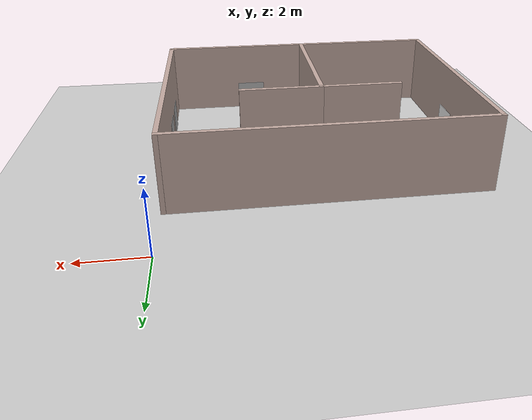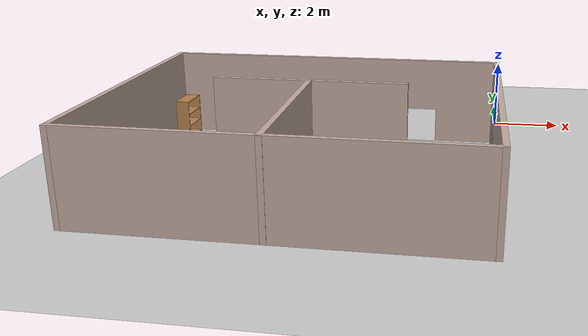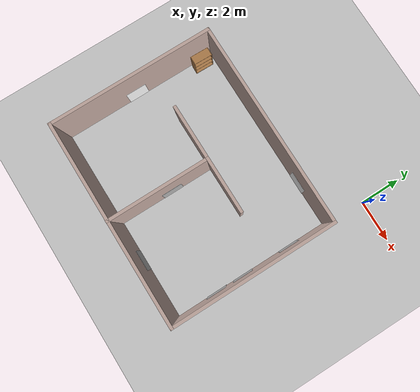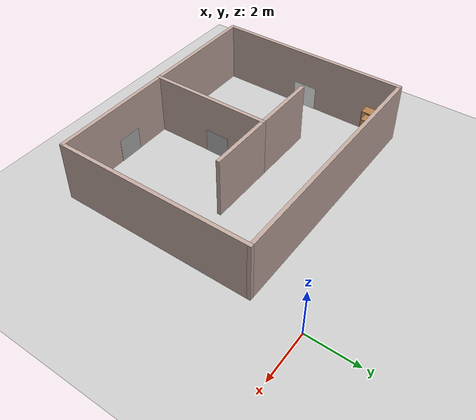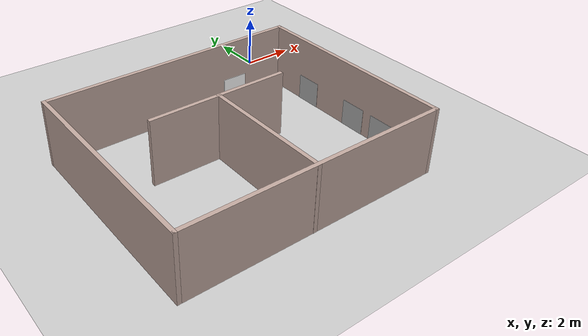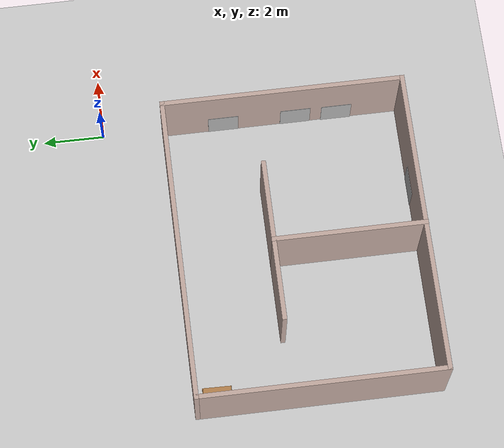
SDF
<sdf version="1.6">
 <world name="default">
  <light name="sun" type="directional">
   <pose>0 0 10 0 -0 0</pose>
   <diffuse>0.8 0.8 0.8 1</diffuse>
   <specular>0.1 0.1 0.1 1</specular>
   <attenuation>
    <range>1000</range>
    <constant>0.9</constant>
    <linear>0.01</linear>
    <quadratic>0.001</quadratic>
   </attenuation>
   <direction>-0.5 0.5 -1</direction>
  </light>
  <model name="ground_plane">
   <static>1</static>
   <link name="link">
    <collision name="collision">
     <geometry><plane><normal>0 0 1</normal><size>100 100</size></plane></geometry>
     <surface><friction><ode><mu>100</mu><mu2>50</mu2></ode></friction></surface>
    </collision>
    <visual name="visual">
     <cast_shadows>0</cast_shadows>
     <geometry><plane><normal>0 0 1</normal><size>100 100</size></plane></geometry>
     <material>
      <script><uri>file://media/materials/scripts/gazebo.material</uri><name>Gazebo/Grey</name></script>
     </material>
    </visual>
   </link>
  </model>
  <gravity>0 0 -9.8</gravity>
  <magnetic_field>6e-06 2.3e-05 -4.2e-05</magnetic_field>
  <atmosphere type="adiabatic"/>
  <physics name="default_physics" default="0" type="ode">
   <max_step_size>0.001</max_step_size>
   <real_time_factor>1</real_time_factor>
   <real_time_update_rate>1000</real_time_update_rate>
  </physics>
  <scene><ambient>0.4 0.4 0.4 1</ambient><background>0.7 0.7 0.7 1</background><shadows>1</shadows></scene>
  <spherical_coordinates>
   <surface_model>EARTH_WGS84</surface_model>
   <latitude_deg>0</latitude_deg>
   <longitude_deg>0</longitude_deg>
   <elevation>0</elevation>
   <heading_deg>0</heading_deg>
  </spherical_coordinates>
  <model name="empty_room_colored_walls">
   <pose>-5.06103 -5.97507 0 0 -0 0</pose>
   <link name="Wall_62">
    <collision name="Wall_62_Collision">
     <geometry><box><size>10 0.15 2.5</size></box></geometry>
     <pose>0 0 1.25 0 -0 0</pose>
    </collision>
    <visual name="Wall_62_Visual">
     <pose>0 0 1.25 0 -0 0</pose>
     <geometry><box><size>10 0.15 2.5</size></box></geometry>
     <material>
      <script><uri>file://media/materials/scripts/gazebo.material</uri><name>Gazebo/Grey</name></script>
      <ambient>0.760784 0.662745 0.627451 1</ambient>
     </material>
    </visual>
    <pose>0 -3.92179 0 0 -0 0</pose>
   </link>
   <link name="Wall_63">
    <collision name="Wall_63_Collision">
     <geometry><box><size>8 0.15 2.5</size></box></geometry>
     <pose>0 0 1.25 0 -0 0</pose>
    </collision>
    <visual name="Wall_63_Visual">
     <pose>0 0 1.25 0 -0 0</pose>
     <geometry><box><size>8 0.15 2.5</size></box></geometry>
     <material>
      <script><uri>file://media/materials/scripts/gazebo.material</uri><name>Gazebo/Grey</name></script>
      <ambient>0.760784 0.662745 0.627451 1</ambient>
     </material>
    </visual>
    <pose>4.925 0.003206 0 0 -0 1.5708</pose>
   </link>
   <link name="Wall_64">
    <collision name="Wall_64_Collision">
     <geometry><box><size>10 0.15 2.5</size></box></geometry>
     <pose>0 0 1.25 0 -0 0</pose>
    </collision>
    <visual name="Wall_64_Visual">
     <pose>0 0 1.25 0 -0 0</pose>
     <geometry><box><size>10 0.15 2.5</size></box></geometry>
     <material>
      <script><uri>file://media/materials/scripts/gazebo.material</uri><name>Gazebo/Grey</name></script>
      <ambient>0.760784 0.662745 0.627451 1</ambient>
     </material>
    </visual>
    <pose>0 3.92821 0 0 -0 3.14159</pose>
   </link>
   <link name="Wall_65">
    <collision name="Wall_65_Collision">
     <geometry><box><size>8 0.15 2.5</size></box></geometry>
     <pose>0 0 1.25 0 -0 0</pose>
    </collision>
    <visual name="Wall_65_Visual">
     <pose>0 0 1.25 0 -0 0</pose>
     <geometry><box><size>8 0.15 2.5</size></box></geometry>
     <material>
      <script><uri>file://media/materials/scripts/gazebo.material</uri><name>Gazebo/Grey</name></script>
      <ambient>0.760784 0.662745 0.627451 1</ambient>
     </material>
    </visual>
    <pose>-4.925 0.003206 0 0 0 -1.5708</pose>
   </link>
   <link name="Wall_70">
    <collision name="Wall_70_Collision">
     <geometry><box><size>5 0.15 2.5</size></box></geometry>
     <pose>0 0 1.25 0 -0 0</pose>
    </collision>
    <visual name="Wall_70_Visual">
     <pose>0 0 1.25 0 -0 0</pose>
     <geometry><box><size>5 0.15 2.5</size></box></geometry>
     <material>
      <script><uri>file://media/materials/scripts/gazebo.material</uri><name>Gazebo/Grey</name></script>
      <ambient>0.760784 0.662745 0.627451 1</ambient>
     </material>
    </visual>
    <pose>-0.121943 -1.50321 0 0 -0 1.5708</pose>
   </link>
   <link name="Wall_71">
    <collision name="Wall_71_Collision">
     <geometry><box><size>2.75 0.15 2.5</size></box></geometry>
     <pose>0 0 1.25 0 -0 0</pose>
    </collision>
    <visual name="Wall_71_Visual">
     <pose>0 0 1.25 0 -0 0</pose>
     <geometry><box><size>2.75 0.15 2.5</size></box></geometry>
     <material>
      <script><uri>file://media/materials/scripts/gazebo.material</uri><name>Gazebo/Grey</name></script>
      <ambient>0.760784 0.662745 0.627451 1</ambient>
     </material>
    </visual>
    <pose>1.17806 0.921794 0 0 -0 0</pose>
   </link>
   <link name="Wall_73">
    <collision name="Wall_73_Collision">
     <geometry><box><size>2.75 0.15 2.5</size></box></geometry>
     <pose>0 0 1.25 0 -0 0</pose>
    </collision>
    <visual name="Wall_73_Visual">
     <pose>0 0 1.25 0 -0 0</pose>
     <geometry><box><size>2.75 0.15 2.5</size></box></geometry>
     <material>
      <script><uri>file://media/materials/scripts/gazebo.material</uri><name>Gazebo/Grey</name></script>
      <ambient>0.760784 0.662745 0.627451 1</ambient>
     </material>
    </visual>
    <pose>-1.42194 0.921794 0 0 -0 3.14159</pose>
   </link>
   <static>1</static>
  </model>
  <model name="bookshelf">
   <static>1</static>
   <link name="link">
    <inertial><mass>1</mass></inertial>
    <collision name="back">
     <pose>0 0.005 0.6 0 -0 0</pose>
     <geometry><box><size>0.9 0.01 1.2</size></box></geometry>
    </collision>
    <visual name="visual1">
     <pose>0 0.005 0.6 0 -0 0</pose>
     <geometry><box><size>0.9 0.01 1.2</size></box></geometry>
     <material>
      <script><uri>file://media/materials/scripts/gazebo.material</uri><name>Gazebo/Wood</name></script>
     </material>
    </visual>
    <collision name="left_side">
     <pose>0.45 -0.195 0.6 0 -0 0</pose>
     <geometry><box><size>0.02 0.4 1.2</size></box></geometry>
    </collision>
    <visual name="visual2">
     <pose>0.45 -0.195 0.6 0 -0 0</pose>
     <geometry><box><size>0.02 0.4 1.2</size></box></geometry>
     <material>
      <script><uri>file://media/materials/scripts/gazebo.material</uri><name>Gazebo/Wood</name></script>
     </material>
    </visual>
    <collision name="right_side">
     <pose>-0.45 -0.195 0.6 0 -0 0</pose>
     <geometry><box><size>0.02 0.4 1.2</size></box></geometry>
    </collision>
    <visual name="visual3">
     <pose>-0.45 -0.195 0.6 0 -0 0</pose>
     <geometry><box><size>0.02 0.4 1.2</size></box></geometry>
     <material>
      <script><uri>file://media/materials/scripts/gazebo.material</uri><name>Gazebo/Wood</name></script>
     </material>
    </visual>
    <collision name="bottom">
     <pose>0 -0.195 0.03 0 -0 0</pose>
     <geometry><box><size>0.88 0.4 0.06</size></box></geometry>
    </collision>
    <visual name="visual4">
     <pose>0 -0.195 0.03 0 -0 0</pose>
     <geometry><box><size>0.88 0.4 0.06</size></box></geometry>
     <material>
      <script><uri>file://media/materials/scripts/gazebo.material</uri><name>Gazebo/Wood</name></script>
     </material>
    </visual>
    <collision name="top">
     <pose>0 -0.195 1.19 0 -0 0</pose>
     <geometry><box><size>0.88 0.4 0.02</size></box></geometry>
    </collision>
    <visual name="visual5">
     <pose>0 -0.195 1.19 0 -0 0</pose>
     <geometry><box><size>0.88 0.4 0.02</size></box></geometry>
     <material>
      <script><uri>file://media/materials/scripts/gazebo.material</uri><name>Gazebo/Wood</name></script>
     </material>
    </visual>
    <collision name="low_shelf">
     <pose>0 -0.195 0.43 0 -0 0</pose>
     <geometry><box><size>0.88 0.4 0.02</size></box></geometry>
    </collision>
    <visual name="visual6">
     <pose>0 -0.195 0.43 0 -0 0</pose>
     <geometry><box><size>0.88 0.4 0.02</size></box></geometry>
     <material>
      <script><uri>file://media/materials/scripts/gazebo.material</uri><name>Gazebo/Wood</name></script>
     </material>
    </visual>
    <collision name="high_shelf">
     <pose>0 -0.195 0.8 0 -0 0</pose>
     <geometry><box><size>0.88 0.4 0.02</size></box></geometry>
    </collision>
    <visual name="visual7">
     <pose>0 -0.195 0.8 0 -0 0</pose>
     <geometry><box><size>0.88 0.4 0.02</size></box></geometry>
     <material>
      <script><uri>file://media/materials/scripts/gazebo.material</uri><name>Gazebo/Wood</name></script>
     </material>
    </visual>
   </link>
   <pose>-9.80012 -2.72902 0 0 -0 1.5503</pose>
  </model>
  <model name="electric_plug_1_4">
   <link name="link_0">
    <pose>4e-06 0 0 0 -0 0</pose>
    <inertial>
     <mass>1</mass>
     <inertia>
      <ixx>0.166667</ixx>
      <ixy>0</ixy>
      <ixz>0</ixz>
      <iyy>0.166667</iyy>
      <iyz>0</iyz>
      <izz>0.166667</izz>
     </inertia>
    </inertial>
    <visual name="visual">
     <geometry><box><size>0.01 1 1</size></box></geometry>
     <material>
      <lighting>1</lighting>
      <script>
       <uri>model://electric_plug_1_M/materials/scripts</uri>
       <uri>model://electric_plug_1_M/materials/textures</uri>
       <name>Electric/Plug1M</name>
      </script>
      <ambient>1 1 1 1</ambient>
      <diffuse>1 1 1 1</diffuse>
      <specular>0.01 0.01 0.01 1</specular>
      <emissive>1 1 1 1</emissive>
     </material>
     <cast_shadows>0</cast_shadows>
    </visual>
    <collision name="collision">
     <geometry><box><size>0.01 1 1</size></box></geometry>
     <surface>
      <friction>
       <ode><mu>1</mu><mu2>1</mu2><fdir1>0 0 0</fdir1><slip1>0</slip1><slip2>0</slip2></ode>
       <torsional>
        <coefficient>1</coefficient>
        <patch_radius>0</patch_radius>
        <surface_radius>0</surface_radius>
        <use_patch_radius>1</use_patch_radius>
        <ode><slip>0</slip></ode>
       </torsional>
      </friction>
      <bounce><restitution_coefficient>0</restitution_coefficient><threshold>1e+06</threshold></bounce>
      <contact>
       <collide_without_contact>0</collide_without_contact>
       <collide_without_contact_bitmask>1</collide_without_contact_bitmask>
       <collide_bitmask>1</collide_bitmask>
       <ode>
        <soft_cfm>0</soft_cfm>
        <soft_erp>0.2</soft_erp>
        <kp>1e+13</kp>
        <kd>1</kd>
        <max_vel>0.01</max_vel>
        <min_depth>0</min_depth>
       </ode>
       <bullet>
        <split_impulse>1</split_impulse>
        <split_impulse_penetration_threshold>-0.01</split_impulse_penetration_threshold>
        <soft_cfm>0</soft_cfm>
        <soft_erp>0.2</soft_erp>
        <kp>1e+13</kp>
        <kd>1</kd>
       </bullet>
      </contact>
     </surface>
    </collision>
   </link>
   <static>0</static>
   <pose>-9.90603 -6.08607 0.5 0 0 -4e-06</pose>
  </model>
  <model name="electric_plug_1_6">
   <link name="link_0">
    <pose>4e-06 0 0 0 -0 0</pose>
    <inertial>
     <mass>1</mass>
     <inertia>
      <ixx>0.166667</ixx>
      <ixy>0</ixy>
      <ixz>0</ixz>
      <iyy>0.166667</iyy>
      <iyz>0</iyz>
      <izz>0.166667</izz>
     </inertia>
    </inertial>
    <visual name="visual">
     <geometry><box><size>0.01 1 1</size></box></geometry>
     <material>
      <lighting>1</lighting>
      <script>
       <uri>model://electric_plug_2_M/materials/scripts</uri>
       <uri>model://electric_plug_2_M/materials/textures</uri>
       <name>Electric/Plug2M</name>
      </script>
      <ambient>0.3 0.3 0.3 1</ambient>
      <diffuse>0.7 0.7 0.7 1</diffuse>
      <specular>0.01 0.01 0.01 1</specular>
      <emissive>1 1 1 1</emissive>
     </material>
     <cast_shadows>0</cast_shadows>
    </visual>
    <collision name="collision">
     <geometry><box><size>0.01 1 1</size></box></geometry>
     <surface>
      <friction>
       <ode><mu>1</mu><mu2>1</mu2><fdir1>0 0 0</fdir1><slip1>0</slip1><slip2>0</slip2></ode>
       <torsional>
        <coefficient>1</coefficient>
        <patch_radius>0</patch_radius>
        <surface_radius>0</surface_radius>
        <use_patch_radius>1</use_patch_radius>
        <ode><slip>0</slip></ode>
       </torsional>
      </friction>
      <bounce><restitution_coefficient>0</restitution_coefficient><threshold>1e+06</threshold></bounce>
      <contact>
       <collide_without_contact>0</collide_without_contact>
       <collide_without_contact_bitmask>1</collide_without_contact_bitmask>
       <collide_bitmask>1</collide_bitmask>
       <ode>
        <soft_cfm>0</soft_cfm>
        <soft_erp>0.2</soft_erp>
        <kp>1e+13</kp>
        <kd>1</kd>
        <max_vel>0.01</max_vel>
        <min_depth>0</min_depth>
       </ode>
       <bullet>
        <split_impulse>1</split_impulse>
        <split_impulse_penetration_threshold>-0.01</split_impulse_penetration_threshold>
        <soft_cfm>0</soft_cfm>
        <soft_erp>0.2</soft_erp>
        <kp>1e+13</kp>
        <kd>1</kd>
       </bullet>
      </contact>
     </surface>
    </collision>
   </link>
   <static>0</static>
   <pose>-5.10297 -7.09512 0.5 0 -0 4e-06</pose>
  </model>
  <model name="electric_plug_4_M_0">
   <link name="link_0">
    <pose>4e-06 0 0 0 -0 0</pose>
    <inertial>
     <mass>1</mass>
     <inertia>
      <ixx>0.166667</ixx>
      <ixy>0</ixy>
      <ixz>0</ixz>
      <iyy>0.166667</iyy>
      <iyz>0</iyz>
      <izz>0.166667</izz>
     </inertia>
    </inertial>
    <visual name="visual">
     <geometry><box><size>0.01 1 1</size></box></geometry>
     <material>
      <lighting>1</lighting>
      <script>
       <uri>model://electric_plug_4_M/materials/scripts</uri>
       <uri>model://electric_plug_4_M/materials/textures</uri>
       <name>Electric/Plug4M</name>
      </script>
      <ambient>0.3 0.3 0.3 1</ambient>
      <diffuse>0.7 0.7 0.7 1</diffuse>
      <specular>0.01 0.01 0.01 1</specular>
      <emissive>1 1 1 1</emissive>
     </material>
     <cast_shadows>0</cast_shadows>
    </visual>
    <collision name="collision">
     <geometry><box><size>0.01 1 1</size></box></geometry>
     <surface>
      <friction>
       <ode><mu>1</mu><mu2>1</mu2><fdir1>0 0 0</fdir1><slip1>0</slip1><slip2>0</slip2></ode>
       <torsional>
        <coefficient>1</coefficient>
        <patch_radius>0</patch_radius>
        <surface_radius>0</surface_radius>
        <use_patch_radius>1</use_patch_radius>
        <ode><slip>0</slip></ode>
       </torsional>
      </friction>
      <bounce><restitution_coefficient>0</restitution_coefficient><threshold>1e+06</threshold></bounce>
      <contact>
       <collide_without_contact>0</collide_without_contact>
       <collide_without_contact_bitmask>1</collide_without_contact_bitmask>
       <collide_bitmask>1</collide_bitmask>
       <ode>
        <soft_cfm>0</soft_cfm>
        <soft_erp>0.2</soft_erp>
        <kp>1e+13</kp>
        <kd>1</kd>
        <max_vel>0.01</max_vel>
        <min_depth>0</min_depth>
       </ode>
       <bullet>
        <split_impulse>1</split_impulse>
        <split_impulse_penetration_threshold>-0.01</split_impulse_penetration_threshold>
        <soft_cfm>0</soft_cfm>
        <soft_erp>0.2</soft_erp>
        <kp>1e+13</kp>
        <kd>1</kd>
       </bullet>
      </contact>
     </surface>
    </collision>
   </link>
   <static>0</static>
   <pose>-0.216032 -6.4385 0.5 0 -0 4e-06</pose>
  </model>
  <model name="electric_plug_1_8">
   <link name="link_0">
    <pose>4e-06 0 0 0 -0 0</pose>
    <inertial>
     <mass>1</mass>
     <inertia>
      <ixx>0.166667</ixx>
      <ixy>0</ixy>
      <ixz>0</ixz>
      <iyy>0.166667</iyy>
      <iyz>0</iyz>
      <izz>0.166667</izz>
     </inertia>
    </inertial>
    <visual name="visual">
     <geometry><box><size>0.01 1 1</size></box></geometry>
     <material>
      <lighting>1</lighting>
      <script>
       <uri>model://electric_plug_1_M/materials/scripts</uri>
       <uri>model://electric_plug_1_M/materials/textures</uri>
       <name>Electric/Plug1M</name>
      </script>
      <ambient>1 1 1 1</ambient>
      <diffuse>1 1 1 1</diffuse>
      <specular>0.01 0.01 0.01 1</specular>
      <emissive>1 1 1 1</emissive>
     </material>
     <cast_shadows>0</cast_shadows>
    </visual>
    <collision name="collision">
     <geometry><box><size>0.01 1 1</size></box></geometry>
     <surface>
      <friction>
       <ode><mu>1</mu><mu2>1</mu2><fdir1>0 0 0</fdir1><slip1>0</slip1><slip2>0</slip2></ode>
       <torsional>
        <coefficient>1</coefficient>
        <patch_radius>0</patch_radius>
        <surface_radius>0</surface_radius>
        <use_patch_radius>1</use_patch_radius>
        <ode><slip>0</slip></ode>
       </torsional>
      </friction>
      <bounce><restitution_coefficient>0</restitution_coefficient><threshold>1e+06</threshold></bounce>
      <contact>
       <collide_without_contact>0</collide_without_contact>
       <collide_without_contact_bitmask>1</collide_without_contact_bitmask>
       <collide_bitmask>1</collide_bitmask>
       <ode>
        <soft_cfm>0</soft_cfm>
        <soft_erp>0.2</soft_erp>
        <kp>1e+13</kp>
        <kd>1</kd>
        <max_vel>0.01</max_vel>
        <min_depth>0</min_depth>
       </ode>
       <bullet>
        <split_impulse>1</split_impulse>
        <split_impulse_penetration_threshold>-0.01</split_impulse_penetration_threshold>
        <soft_cfm>0</soft_cfm>
        <soft_erp>0.2</soft_erp>
        <kp>1e+13</kp>
        <kd>1</kd>
       </bullet>
      </contact>
     </surface>
    </collision>
   </link>
   <static>0</static>
   <pose>-2.38766 -2.13149 0.5 0 1e-06 -1.57997</pose>
  </model>
  <model name="electric_plug_1_N">
   <link name="link_0">
    <pose>4e-06 0 0 0 -0 0</pose>
    <inertial>
     <mass>1</mass>
     <inertia>
      <ixx>0.166667</ixx>
      <ixy>0</ixy>
      <ixz>0</ixz>
      <iyy>0.166667</iyy>
      <iyz>0</iyz>
      <izz>0.166667</izz>
     </inertia>
    </inertial>
    <visual name="visual">
     <geometry><box><size>0.01 1 1</size></box></geometry>
     <material>
      <lighting>1</lighting>
      <script>
       <uri>model://electric_plug_1_N/materials/scripts</uri>
       <uri>model://electric_plug_1_N/materials/textures</uri>
       <name>Electric/Plug1N</name>
      </script>
      <ambient>0.3 0.3 0.3 1</ambient>
      <diffuse>0.7 0.7 0.7 1</diffuse>
      <specular>0.01 0.01 0.01 1</specular>
      <emissive>1 1 1 1</emissive>
     </material>
     <cast_shadows>0</cast_shadows>
    </visual>
    <collision name="collision">
     <geometry><box><size>0.01 1 1</size></box></geometry>
     <surface>
      <friction>
       <ode><mu>1</mu><mu2>1</mu2><fdir1>0 0 0</fdir1><slip1>0</slip1><slip2>0</slip2></ode>
       <torsional>
        <coefficient>1</coefficient>
        <patch_radius>0</patch_radius>
        <surface_radius>0</surface_radius>
        <use_patch_radius>1</use_patch_radius>
        <ode><slip>0</slip></ode>
       </torsional>
      </friction>
      <bounce><restitution_coefficient>0</restitution_coefficient><threshold>1e+06</threshold></bounce>
      <contact>
       <collide_without_contact>0</collide_without_contact>
       <collide_without_contact_bitmask>1</collide_without_contact_bitmask>
       <collide_bitmask>1</collide_bitmask>
       <ode>
        <soft_cfm>0</soft_cfm>
        <soft_erp>0.2</soft_erp>
        <kp>1e+13</kp>
        <kd>1</kd>
        <max_vel>0.01</max_vel>
        <min_depth>0</min_depth>
       </ode>
       <bullet>
        <split_impulse>1</split_impulse>
        <split_impulse_penetration_threshold>-0.01</split_impulse_penetration_threshold>
        <soft_cfm>0</soft_cfm>
        <soft_erp>0.2</soft_erp>
        <kp>1e+13</kp>
        <kd>1</kd>
       </bullet>
      </contact>
     </surface>
    </collision>
   </link>
   <static>0</static>
   <pose>-3.15005 -9.81685 0.5 0 0 -1.5708</pose>
  </model>
  <model name="electric_plug_2">
   <link name="link_0">
    <pose>4e-06 0 0 0 -0 0</pose>
    <inertial>
     <mass>1</mass>
     <inertia>
      <ixx>0.166667</ixx>
      <ixy>0</ixy>
      <ixz>0</ixz>
      <iyy>0.166667</iyy>
      <iyz>0</iyz>
      <izz>0.166667</izz>
     </inertia>
    </inertial>
    <visual name="visual">
     <geometry><box><size>0.01 1 1</size></box></geometry>
     <material>
      <lighting>1</lighting>
      <script>
       <uri>model://electric_plug_2_N/materials/scripts</uri>
       <uri>model://electric_plug_2_N/materials/textures</uri>
       <name>Electric/Plug2N</name>
      </script>
      <ambient>0.3 0.3 0.3 1</ambient>
      <diffuse>0.7 0.7 0.7 1</diffuse>
      <specular>0.01 0.01 0.01 1</specular>
      <emissive>1 1 1 1</emissive>
     </material>
     <cast_shadows>0</cast_shadows>
    </visual>
    <collision name="collision">
     <geometry><box><size>0.01 1 1</size></box></geometry>
     <surface>
      <friction>
       <ode><mu>1</mu><mu2>1</mu2><fdir1>0 0 0</fdir1><slip1>0</slip1><slip2>0</slip2></ode>
       <torsional>
        <coefficient>1</coefficient>
        <patch_radius>0</patch_radius>
        <surface_radius>0</surface_radius>
        <use_patch_radius>1</use_patch_radius>
        <ode><slip>0</slip></ode>
       </torsional>
      </friction>
      <bounce><restitution_coefficient>0</restitution_coefficient><threshold>1e+06</threshold></bounce>
      <contact>
       <collide_without_contact>0</collide_without_contact>
       <collide_without_contact_bitmask>1</collide_without_contact_bitmask>
       <collide_bitmask>1</collide_bitmask>
       <ode>
        <soft_cfm>0</soft_cfm>
        <soft_erp>0.2</soft_erp>
        <kp>1e+13</kp>
        <kd>1</kd>
        <max_vel>0.01</max_vel>
        <min_depth>0</min_depth>
       </ode>
       <bullet>
        <split_impulse>1</split_impulse>
        <split_impulse_penetration_threshold>-0.01</split_impulse_penetration_threshold>
        <soft_cfm>0</soft_cfm>
        <soft_erp>0.2</soft_erp>
        <kp>1e+13</kp>
        <kd>1</kd>
       </bullet>
      </contact>
     </surface>
    </collision>
   </link>
   <static>0</static>
   <pose>-0.216172 -4.02448 0.5 0 -1e-06 4e-06</pose>
  </model>
  <model name="electric_plug_3_N">
   <link name="link_0">
    <pose>4e-06 0 0 0 -0 0</pose>
    <inertial>
     <mass>1</mass>
     <inertia>
      <ixx>0.166667</ixx>
      <ixy>0</ixy>
      <ixz>0</ixz>
      <iyy>0.166667</iyy>
      <iyz>0</iyz>
      <izz>0.166667</izz>
     </inertia>
    </inertial>
    <visual name="visual">
     <geometry><box><size>0.01 1 1</size></box></geometry>
     <material>
      <lighting>1</lighting>
      <script>
       <uri>model://electric_plug_3_N/materials/scripts</uri>
       <uri>model://electric_plug_3_N/materials/textures</uri>
       <name>Electric/Plug3N</name>
      </script>
      <ambient>0.3 0.3 0.3 1</ambient>
      <diffuse>0.7 0.7 0.7 1</diffuse>
      <specular>0.01 0.01 0.01 1</specular>
      <emissive>1 1 1 1</emissive>
     </material>
    </visual>
    <collision name="collision">
     <geometry><box><size>0.01 1 1</size></box></geometry>
     <surface>
      <friction>
       <ode><mu>1</mu><mu2>1</mu2><fdir1>0 0 0</fdir1><slip1>0</slip1><slip2>0</slip2></ode>
       <torsional>
        <coefficient>1</coefficient>
        <patch_radius>0</patch_radius>
        <surface_radius>0</surface_radius>
        <use_patch_radius>1</use_patch_radius>
        <ode><slip>0</slip></ode>
       </torsional>
      </friction>
      <bounce><restitution_coefficient>0</restitution_coefficient><threshold>1e+06</threshold></bounce>
      <contact>
       <collide_without_contact>0</collide_without_contact>
       <collide_without_contact_bitmask>1</collide_without_contact_bitmask>
       <collide_bitmask>1</collide_bitmask>
       <ode>
        <soft_cfm>0</soft_cfm>
        <soft_erp>0.2</soft_erp>
        <kp>1e+13</kp>
        <kd>1</kd>
        <max_vel>0.01</max_vel>
        <min_depth>0</min_depth>
       </ode>
       <bullet>
        <split_impulse>1</split_impulse>
        <split_impulse_penetration_threshold>-0.01</split_impulse_penetration_threshold>
        <soft_cfm>0</soft_cfm>
        <soft_erp>0.2</soft_erp>
        <kp>1e+13</kp>
        <kd>1</kd>
       </bullet>
      </contact>
     </surface>
    </collision>
   </link>
   <static>0</static>
   <pose>-0.228915 -7.80902 0.499996 0 -0.000483 0</pose>
  </model>
 </world>
</sdf>
